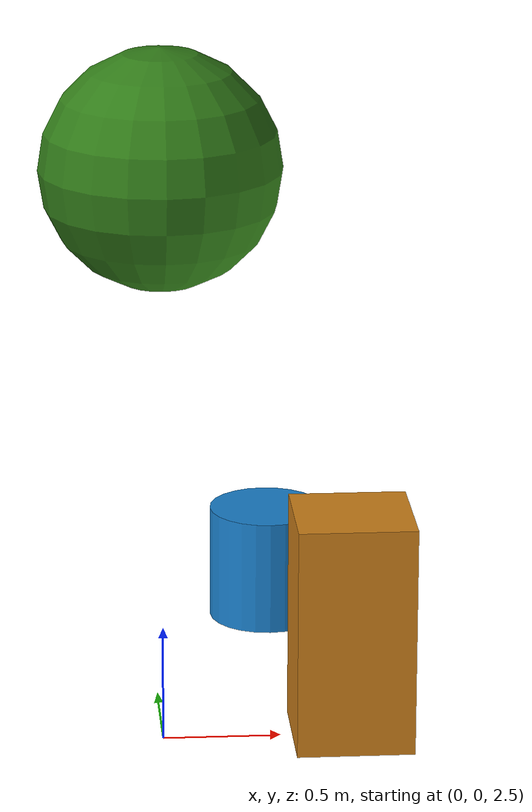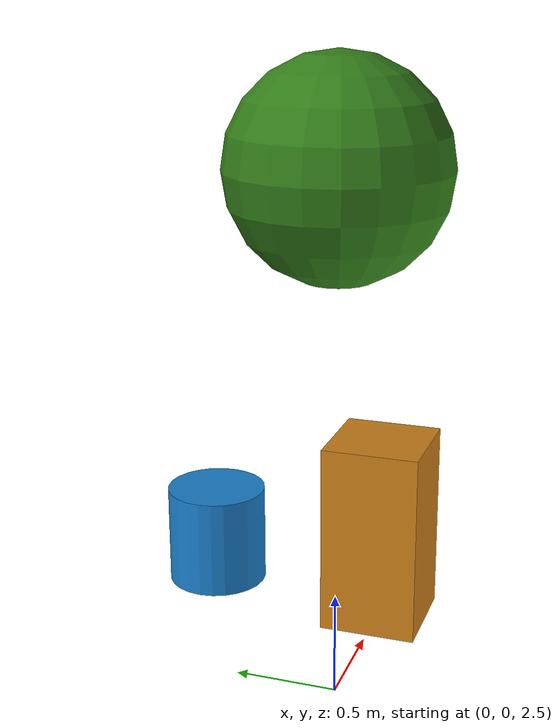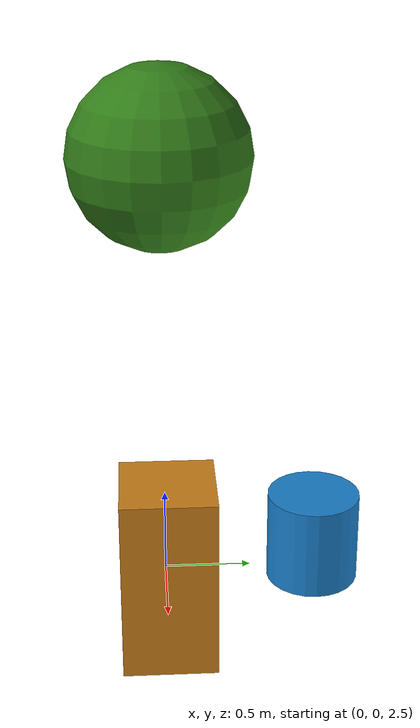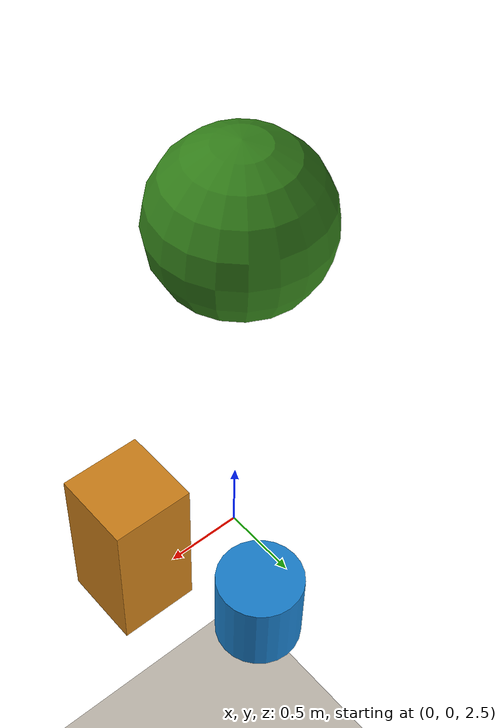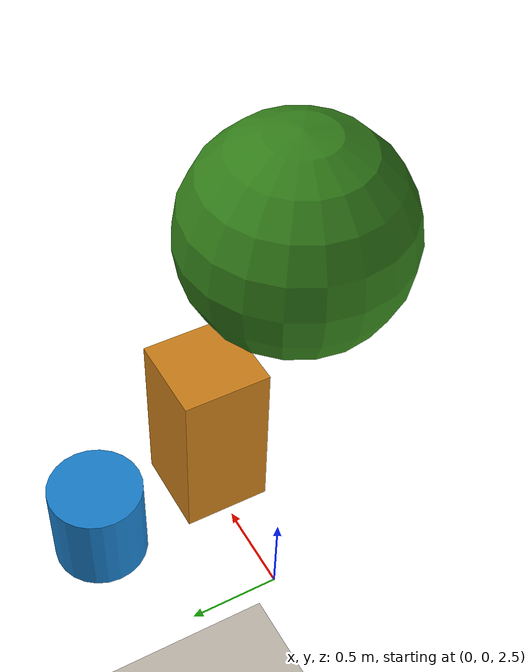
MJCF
<mujoco>
  <include file="./common/materials.xml"/>
  <option timestep="0.02" iterations="4" solver="PGS"/>
  <asset>
    <texture type="skybox" builtin="gradient" rgb1=".4 .5 .6" rgb2="0 0 0"
    width="100" height="100"/>
    <texture type="2d" name="groundplane" builtin="checker" mark="edge" rgb1="0.2 0.3 0.4" rgb2="0.1 0.2 0.3"
    markrgb="0.8 0.8 0.8" width="300" height="300"/>
    <material name="groundplane" texture="groundplane" texuniform="true" texrepeat="1 1" reflectance="0.2"/>
  </asset>
  <worldbody>
    <light name="light" pos="0 0 3" directional = "true"/>
    <geom type="plane" size="2 2 .1" material = "motphys-ground" />
    <body pos="0 0 5">
      <freejoint/>
      <geom priority="1" type="sphere" size="0.5" rgba = "0.2 0.5 0.1 1.0"/>
      <inertial pos="0 0 0"  mass="10"
      diaginertia="1 1 1"/>
    </body>

    <body pos="0.8 0 3">
      <freejoint/>
      <geom priority="1" type="box" size="0.25 0.25 0.5" rgba = "0.8 0.5 0.1 1.0"/>
      <inertial pos="0 0 0"  mass="10"
      diaginertia="1 1 1"/>
    </body>

    <body pos="0.5 0.8 3">
      <freejoint/>
      <geom priority="1" type="cylinder" size="0.25 0.25 0.5" rgba = "0.1 0.5 0.8 1.0"/>
      <inertial pos="0 0 0"  mass="10"
      diaginertia="1 1 1"/>
    </body>
  </worldbody>

</mujoco>

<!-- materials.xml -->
<!--
Common textures, colors and materials to be used throughout this suite. Some
materials such as xxx_highlight are activated on occurence of certain events,
for example receiving a positive reward.
-->
<mujoco>
  <asset>
    <texture name="motphys-ground" type="2d" file="motphys-ground.png" />
    <material name="motphys-ground" texture="motphys-ground" texuniform="true"
      texrepeat="0.4 0.4" />
  </asset>
</mujoco>
